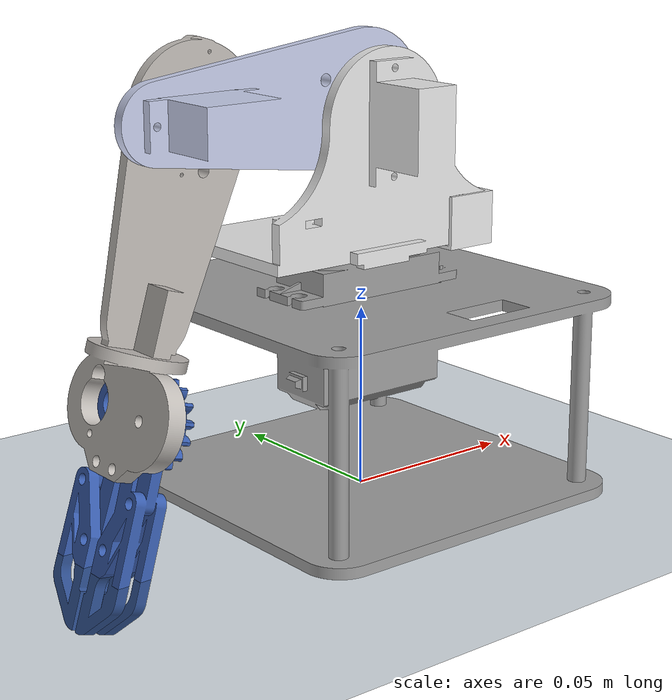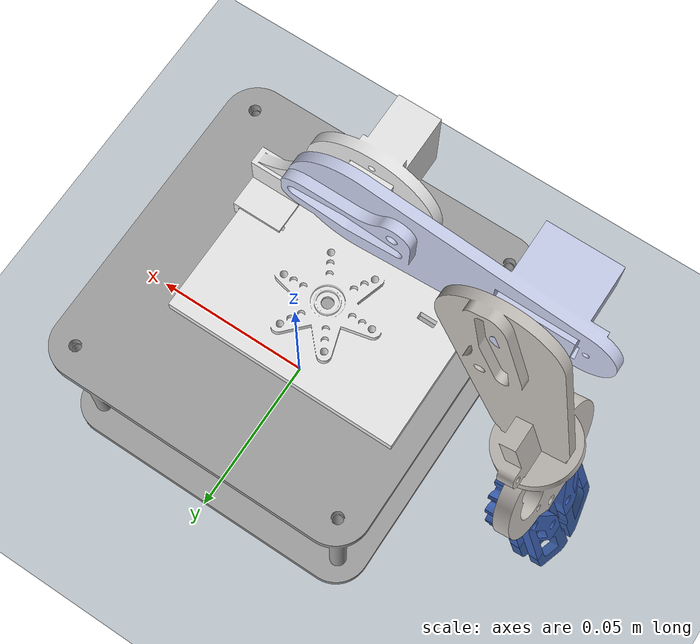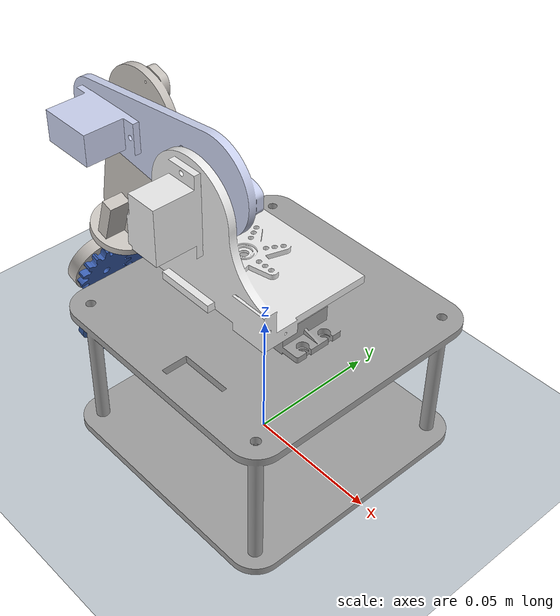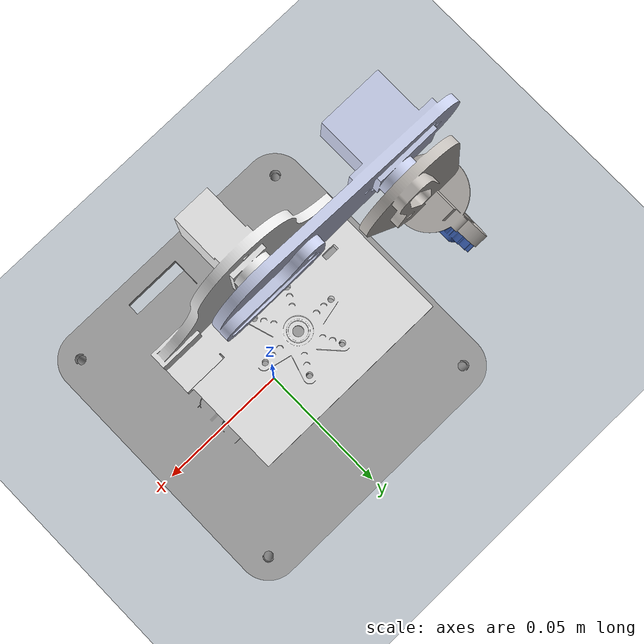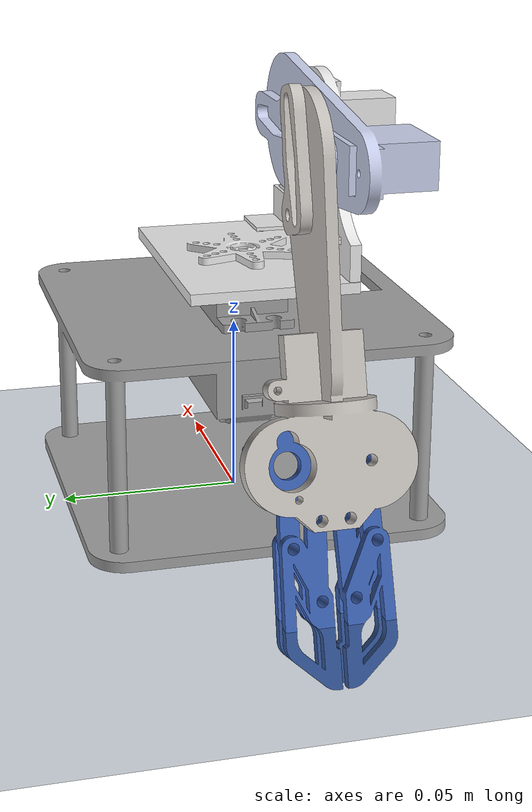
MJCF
<mujoco model="zero_check">
  <compiler angle="radian" meshdir="../meshes" autolimits="true"/>
  <visual>
    <headlight diffuse="0.6 0.6 0.6" ambient="0.3 0.3 0.3" specular="0 0 0"/>
    <global azimuth="120" elevation="-20"/>
  </visual>
  <asset>
    <texture name="grid" type="2d" builtin="checker" width="512" height="512"
             rgb1="0.1 0.2 0.3" rgb2="0.2 0.3 0.4"/>
    <material name="grid" texture="grid" texrepeat="16 16" texuniform="true" reflectance="0.2"/>
    <mesh name="base_link" file="base_link_set_zero.stl"/>
    <mesh name="link_1" file="link_1_set_zero.stl"/>
    <mesh name="link_2" file="link_2_set_zero.stl"/>
    <mesh name="link_3" file="link_3_set_zero.stl"/>
    <mesh name="right_gripper" file="right_gripper_set_zero.stl"/>
    <mesh name="left_gripper" file="left_gripper_set_zero.stl"/>
    <material name="gray" rgba="0.627 0.627 0.627 1"/>
    <material name="white" rgba="0.917 0.917 0.917 1"/>
    <material name="blue" rgba="0.792 0.820 0.933 1"/>
    <material name="silver" rgba="0.776 0.757 0.737 1"/>
    <material name="dark_blue" rgba="0.231 0.380 0.706 1"/>
  </asset>
  <worldbody>
    <geom name="floor" type="plane" size="2 2 0.1" material="grid" condim="3"/>
    <geom type="mesh" mesh="base_link" material="gray"/>
    <geom type="mesh" mesh="link_1" material="white"/>
    <geom type="mesh" mesh="link_2" material="blue"/>
    <geom type="mesh" mesh="link_3" material="silver"/>
    <geom type="mesh" mesh="right_gripper" material="dark_blue"/>
    <geom type="mesh" mesh="left_gripper" material="dark_blue"/>
  </worldbody>
</mujoco>
